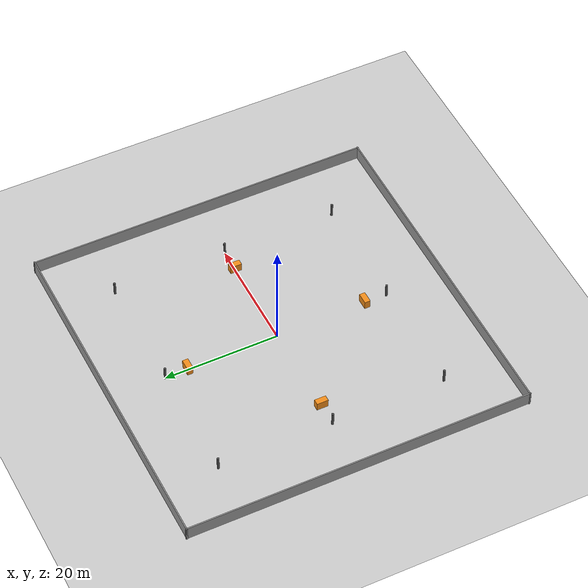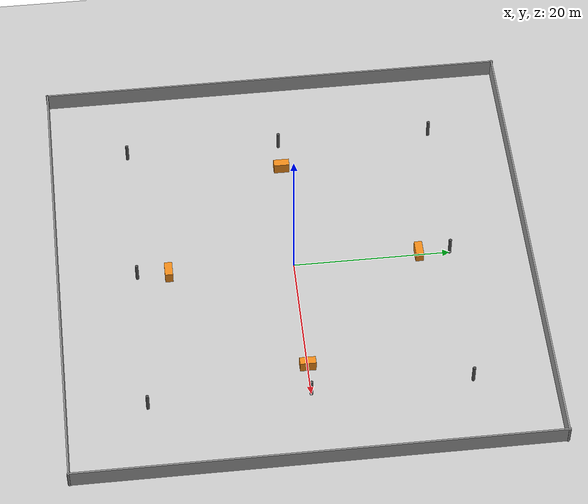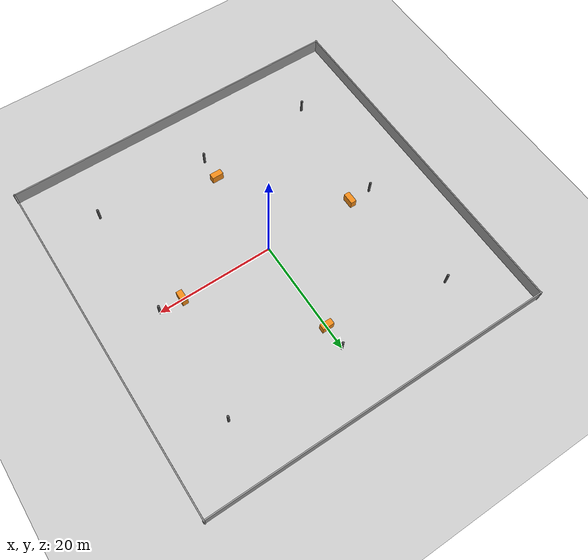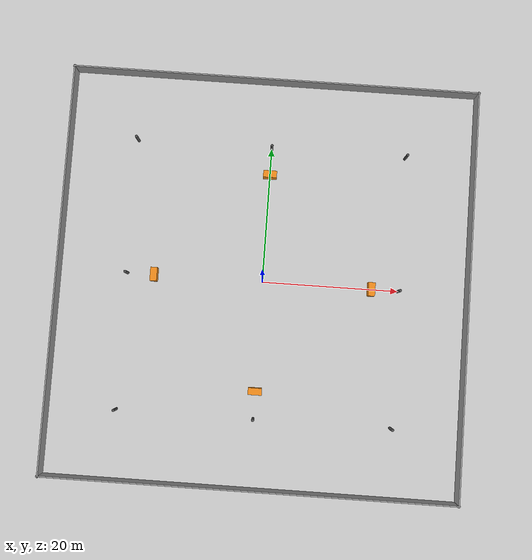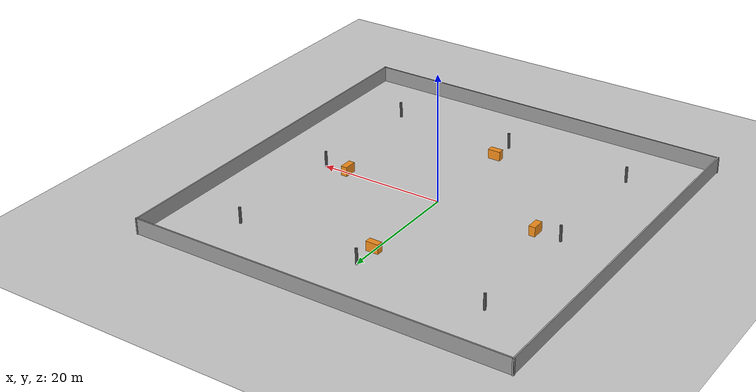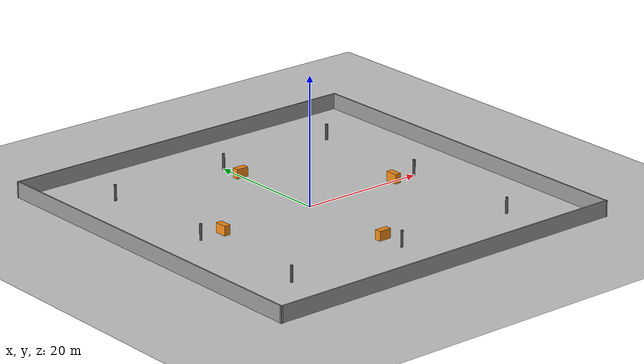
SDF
<?xml version="1.0"?>
<sdf version="1.6">
  <world name="warehouse_open">

    <!-- 기본 광원/바닥 (Gazebo 내장 모델) -->
    <include><uri>model://sun</uri></include>
    <include><uri>model://ground_plane</uri></include>

    <scene>
      <ambient>0.5 0.5 0.5 1</ambient>
      <background>0.7 0.7 0.7 1</background>
      <shadows>true</shadows>
    </scene>

    <physics type="ode">
      <real_time_update_rate>1000.0</real_time_update_rate>
      <max_step_size>0.001</max_step_size>
      <real_time_factor>1.0</real_time_factor>
    </physics>

    <!-- ===================== 외벽 (60x60, 높이 2.5m) ===================== -->
    <model name="warehouse_walls">
      <static>true</static>
      <link name="walls">
        <!-- North (y=+30) -->
        <collision name="c_north"><pose>0 30 1.25 0 0 0</pose>
          <geometry><box><size>60.4 0.2 2.5</size></box></geometry></collision>
        <visual name="v_north"><pose>0 30 1.25 0 0 0</pose>
          <geometry><box><size>60.4 0.2 2.5</size></box></geometry>
          <material><script><uri>file://media/materials/scripts/gazebo.material</uri><name>Gazebo/Grey</name></script></material></visual>
        <!-- South (y=-30) -->
        <collision name="c_south"><pose>0 -30 1.25 0 0 0</pose>
          <geometry><box><size>60.4 0.2 2.5</size></box></geometry></collision>
        <visual name="v_south"><pose>0 -30 1.25 0 0 0</pose>
          <geometry><box><size>60.4 0.2 2.5</size></box></geometry>
          <material><script><uri>file://media/materials/scripts/gazebo.material</uri><name>Gazebo/Grey</name></script></material></visual>
        <!-- East (x=+30) -->
        <collision name="c_east"><pose>30 0 1.25 0 0 0</pose>
          <geometry><box><size>0.2 60.4 2.5</size></box></geometry></collision>
        <visual name="v_east"><pose>30 0 1.25 0 0 0</pose>
          <geometry><box><size>0.2 60.4 2.5</size></box></geometry>
          <material><script><uri>file://media/materials/scripts/gazebo.material</uri><name>Gazebo/Grey</name></script></material></visual>
        <!-- West (x=-30) -->
        <collision name="c_west"><pose>-30 0 1.25 0 0 0</pose>
          <geometry><box><size>0.2 60.4 2.5</size></box></geometry></collision>
        <visual name="v_west"><pose>-30 0 1.25 0 0 0</pose>
          <geometry><box><size>0.2 60.4 2.5</size></box></geometry>
          <material><script><uri>file://media/materials/scripts/gazebo.material</uri><name>Gazebo/Grey</name></script></material></visual>
      </link>
    </model>

    <!-- ===================== 구조 기둥 8개 (지름 0.4m, 20m 격자, 중앙 비움) ===================== -->
    <model name="pillars">
      <static>true</static>
      <link name="pillars_link">
        <!-- 각 기둥: 반지름 0.2, 길이 2.5, z중심 1.25 -->
        <collision name="c_p1"><pose>-20 -20 1.25 0 0 0</pose><geometry><cylinder><radius>0.2</radius><length>2.5</length></cylinder></geometry></collision>
        <visual name="v_p1"><pose>-20 -20 1.25 0 0 0</pose><geometry><cylinder><radius>0.2</radius><length>2.5</length></cylinder></geometry><material><script><uri>file://media/materials/scripts/gazebo.material</uri><name>Gazebo/DarkGrey</name></script></material></visual>
        <collision name="c_p2"><pose>0 -20 1.25 0 0 0</pose><geometry><cylinder><radius>0.2</radius><length>2.5</length></cylinder></geometry></collision>
        <visual name="v_p2"><pose>0 -20 1.25 0 0 0</pose><geometry><cylinder><radius>0.2</radius><length>2.5</length></cylinder></geometry><material><script><uri>file://media/materials/scripts/gazebo.material</uri><name>Gazebo/DarkGrey</name></script></material></visual>
        <collision name="c_p3"><pose>20 -20 1.25 0 0 0</pose><geometry><cylinder><radius>0.2</radius><length>2.5</length></cylinder></geometry></collision>
        <visual name="v_p3"><pose>20 -20 1.25 0 0 0</pose><geometry><cylinder><radius>0.2</radius><length>2.5</length></cylinder></geometry><material><script><uri>file://media/materials/scripts/gazebo.material</uri><name>Gazebo/DarkGrey</name></script></material></visual>
        <collision name="c_p4"><pose>-20 0 1.25 0 0 0</pose><geometry><cylinder><radius>0.2</radius><length>2.5</length></cylinder></geometry></collision>
        <visual name="v_p4"><pose>-20 0 1.25 0 0 0</pose><geometry><cylinder><radius>0.2</radius><length>2.5</length></cylinder></geometry><material><script><uri>file://media/materials/scripts/gazebo.material</uri><name>Gazebo/DarkGrey</name></script></material></visual>
        <collision name="c_p5"><pose>20 0 1.25 0 0 0</pose><geometry><cylinder><radius>0.2</radius><length>2.5</length></cylinder></geometry></collision>
        <visual name="v_p5"><pose>20 0 1.25 0 0 0</pose><geometry><cylinder><radius>0.2</radius><length>2.5</length></cylinder></geometry><material><script><uri>file://media/materials/scripts/gazebo.material</uri><name>Gazebo/DarkGrey</name></script></material></visual>
        <collision name="c_p6"><pose>-20 20 1.25 0 0 0</pose><geometry><cylinder><radius>0.2</radius><length>2.5</length></cylinder></geometry></collision>
        <visual name="v_p6"><pose>-20 20 1.25 0 0 0</pose><geometry><cylinder><radius>0.2</radius><length>2.5</length></cylinder></geometry><material><script><uri>file://media/materials/scripts/gazebo.material</uri><name>Gazebo/DarkGrey</name></script></material></visual>
        <collision name="c_p7"><pose>0 20 1.25 0 0 0</pose><geometry><cylinder><radius>0.2</radius><length>2.5</length></cylinder></geometry></collision>
        <visual name="v_p7"><pose>0 20 1.25 0 0 0</pose><geometry><cylinder><radius>0.2</radius><length>2.5</length></cylinder></geometry><material><script><uri>file://media/materials/scripts/gazebo.material</uri><name>Gazebo/DarkGrey</name></script></material></visual>
        <collision name="c_p8"><pose>20 20 1.25 0 0 0</pose><geometry><cylinder><radius>0.2</radius><length>2.5</length></cylinder></geometry></collision>
        <visual name="v_p8"><pose>20 20 1.25 0 0 0</pose><geometry><cylinder><radius>0.2</radius><length>2.5</length></cylinder></geometry><material><script><uri>file://media/materials/scripts/gazebo.material</uri><name>Gazebo/DarkGrey</name></script></material></visual>
      </link>
    </model>

    <!-- ===================== 적재 랙 (팔레트 박스 더미, 일부 기둥 가림) ===================== -->
    <model name="racks">
      <static>true</static>
      <link name="racks_link">
        <!-- 각 랙: 2 x 1 x 1.5, z중심 0.75. 기둥과 중앙 사이에 놓아 시선 차단 -->
        <collision name="c_r1"><pose>16 0 0.75 0 0 0</pose><geometry><box><size>1 2 1.5</size></box></geometry></collision>
        <visual name="v_r1"><pose>16 0 0.75 0 0 0</pose><geometry><box><size>1 2 1.5</size></box></geometry><material><script><uri>file://media/materials/scripts/gazebo.material</uri><name>Gazebo/Orange</name></script></material></visual>
        <collision name="c_r2"><pose>-16 0 0.75 0 0 0</pose><geometry><box><size>1 2 1.5</size></box></geometry></collision>
        <visual name="v_r2"><pose>-16 0 0.75 0 0 0</pose><geometry><box><size>1 2 1.5</size></box></geometry><material><script><uri>file://media/materials/scripts/gazebo.material</uri><name>Gazebo/Orange</name></script></material></visual>
        <collision name="c_r3"><pose>0 16 0.75 0 0 0</pose><geometry><box><size>2 1 1.5</size></box></geometry></collision>
        <visual name="v_r3"><pose>0 16 0.75 0 0 0</pose><geometry><box><size>2 1 1.5</size></box></geometry><material><script><uri>file://media/materials/scripts/gazebo.material</uri><name>Gazebo/Orange</name></script></material></visual>
        <collision name="c_r4"><pose>0 -16 0.75 0 0 0</pose><geometry><box><size>2 1 1.5</size></box></geometry></collision>
        <visual name="v_r4"><pose>0 -16 0.75 0 0 0</pose><geometry><box><size>2 1 1.5</size></box></geometry><material><script><uri>file://media/materials/scripts/gazebo.material</uri><name>Gazebo/Orange</name></script></material></visual>
      </link>
    </model>

  </world>
</sdf>
